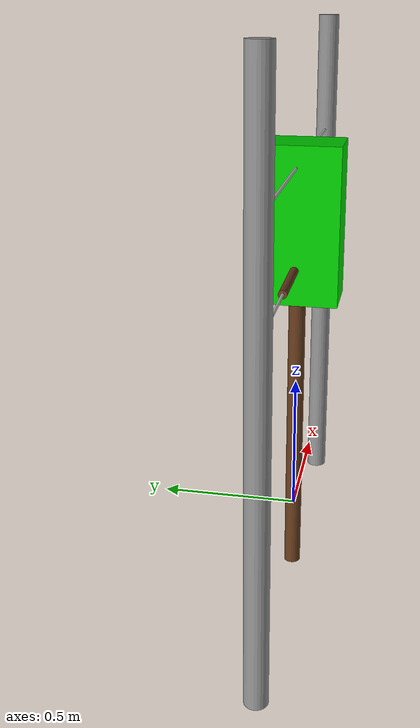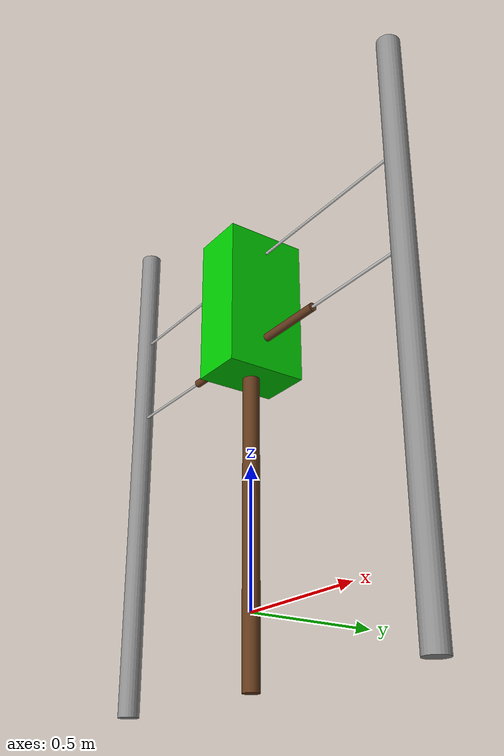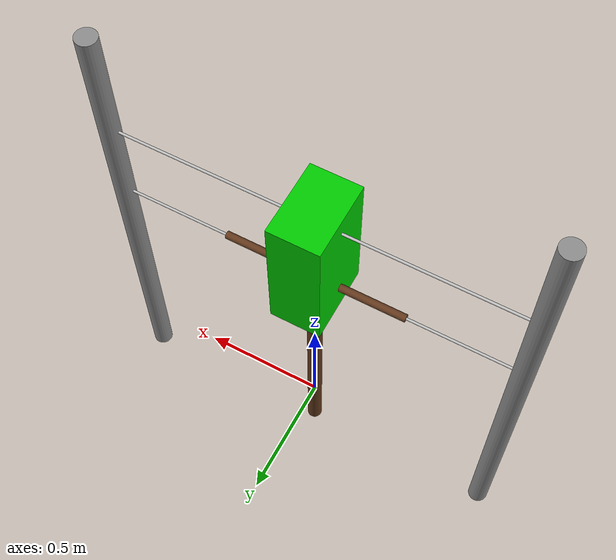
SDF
<?xml version="1.0"?>
<sdf version="1.7">

<model name="vineyard_row">

  <static>true</static>

  <!-- TRONCO -->

  <link name="trunk">

    <pose>0 0 0.5 0 0 0</pose>

    <collision name="collision">
      <geometry>
        <cylinder>
          <radius>0.03</radius>
          <length>0.90</length>
        </cylinder>
      </geometry>
    </collision>

    <visual name="visual">
      <geometry>
        <cylinder>
          <radius>0.03</radius>
          <length>1.50</length>
        </cylinder>
      </geometry>

      <material>
        <ambient>0.38 0.22 0.10 1</ambient>
        <diffuse>0.38 0.22 0.10 1</diffuse>
      </material>

    </visual>

  </link>

  <!-- BRAZO IZQUIERDO -->

  <link name="branch_left">

    <pose>-0.18 0 0.95 0 1.5708 0</pose>

    <visual name="visual">

      <geometry>
        <cylinder>
          <radius>0.015</radius>
          <length>0.36</length>
        </cylinder>

      </geometry>

      <material>
        <ambient>0.40 0.23 0.12 1</ambient>
        <diffuse>0.40 0.23 0.12 1</diffuse>
      </material>

    </visual>

    <collision name="collision">

      <geometry>

        <cylinder>
          <radius>0.015</radius>
          <length>0.36</length>
        </cylinder>

      </geometry>

    </collision>

  </link>

  <!-- BRAZO DERECHO -->

  <link name="branch_right">

    <pose>0.18 0 0.95 0 1.5708 0</pose>

    <visual name="visual">

      <geometry>

        <cylinder>
          <radius>0.015</radius>
          <length>0.36</length>

        </cylinder>

      </geometry>

      <material>
        <ambient>0.40 0.23 0.12 1</ambient>
        <diffuse>0.40 0.23 0.12 1</diffuse>
      </material>

    </visual>

    <collision name="collision">

      <geometry>

        <cylinder>
          <radius>0.015</radius>
          <length>0.36</length>

        </cylinder>

      </geometry>

    </collision>

  </link>

  <!-- POSTE IZQUIERDO -->

  <link name="post_left">

    <pose>-0.80 0 0.75 0 0 0</pose>

    <visual name="visual">

      <geometry>

        <cylinder>
          <radius>0.04</radius>
          <length>2.0</length>

        </cylinder>

      </geometry>

      <material>

        <ambient>0.55 0.55 0.55 1</ambient>
        <diffuse>0.55 0.55 0.55 1</diffuse>

      </material>

    </visual>

    <collision name="collision">

      <geometry>

        <cylinder>
          <radius>0.04</radius>
          <length>2.0</length>

        </cylinder>

      </geometry>

    </collision>

  </link>

  <!-- POSTE DERECHO -->

  <link name="post_right">

    <pose>0.80 0 0.75 0 0 0</pose>

    <visual name="visual">

      <geometry>

        <cylinder>
          <radius>0.04</radius>
          <length>2.0</length>

        </cylinder>

      </geometry>

      <material>

        <ambient>0.55 0.55 0.55 1</ambient>
        <diffuse>0.55 0.55 0.55 1</diffuse>

      </material>

    </visual>

    <collision name="collision">

      <geometry>

        <cylinder>
          <radius>0.04</radius>
          <length>2.0</length>

        </cylinder>

      </geometry>

    </collision>

  </link>

  <!-- ALAMBRE INFERIOR -->

  <link name="wire_lower">

    <pose>0 0 0.95 0 1.5708 0</pose>

    <visual name="visual">

      <geometry>

        <cylinder>
          <radius>0.005</radius>
          <length>1.60</length>

        </cylinder>

      </geometry>

      <material>

        <ambient>0.75 0.75 0.75 1</ambient>
        <diffuse>0.75 0.75 0.75 1</diffuse>

      </material>

    </visual>

  </link>

  <!-- ALAMBRE SUPERIOR -->

  <link name="wire_upper">

    <pose>0 0 1.30 0 1.5708 0</pose>

    <visual name="visual">

      <geometry>

        <cylinder>
          <radius>0.005</radius>
          <length>1.60</length>

        </cylinder>

      </geometry>

      <material>

        <ambient>0.75 0.75 0.75 1</ambient>
        <diffuse>0.75 0.75 0.75 1</diffuse>

      </material>

    </visual>

  </link>

  <!-- HOJAS -->

  <link name="leaves">

  <pose>0 0 1.10 0 0 0</pose>
    <!-- TONO 2: Franja Central (Verde Claro + Reflejo) -->
    <visual name="visual_stripe_2">
      <pose>0 0 0 0 0 0</pose>
      <geometry>
        <box>
          <size>0.2 0.30 0.55</size>
        </box>
      </geometry>
      <material>
        <ambient>0.0 0.6 0.0 1</ambient>
        <diffuse>0.0 0.8 0.0 1</diffuse>
        <!-- Genera un brillo reflejado al incidir la luz del entorno -->
        <specular>0.5 0.5 0.5 1</specular>
        <shininess>20</shininess>
      </material>
    </visual>

</link>

</model>

</sdf>
